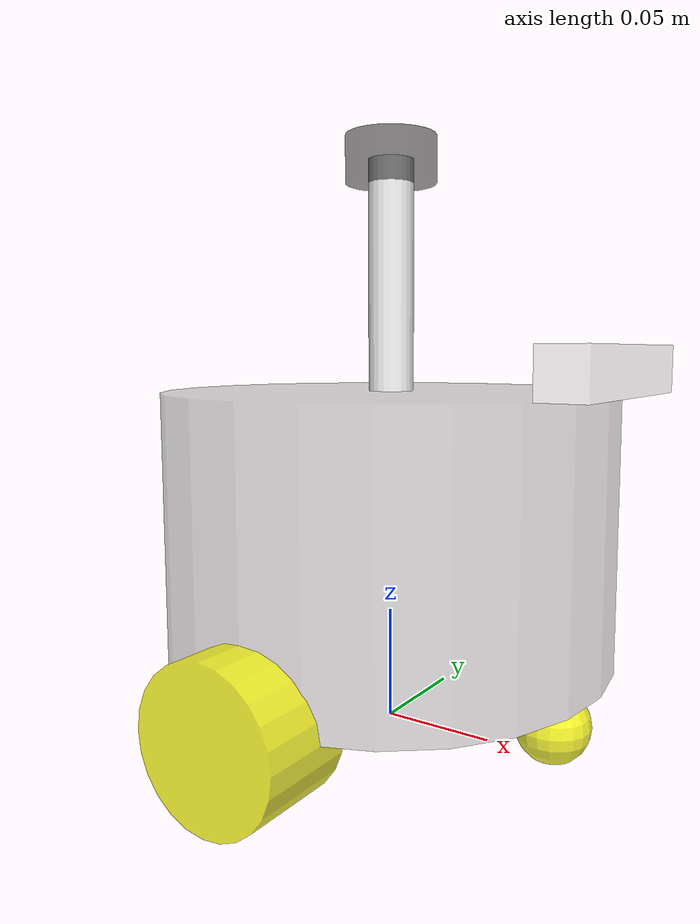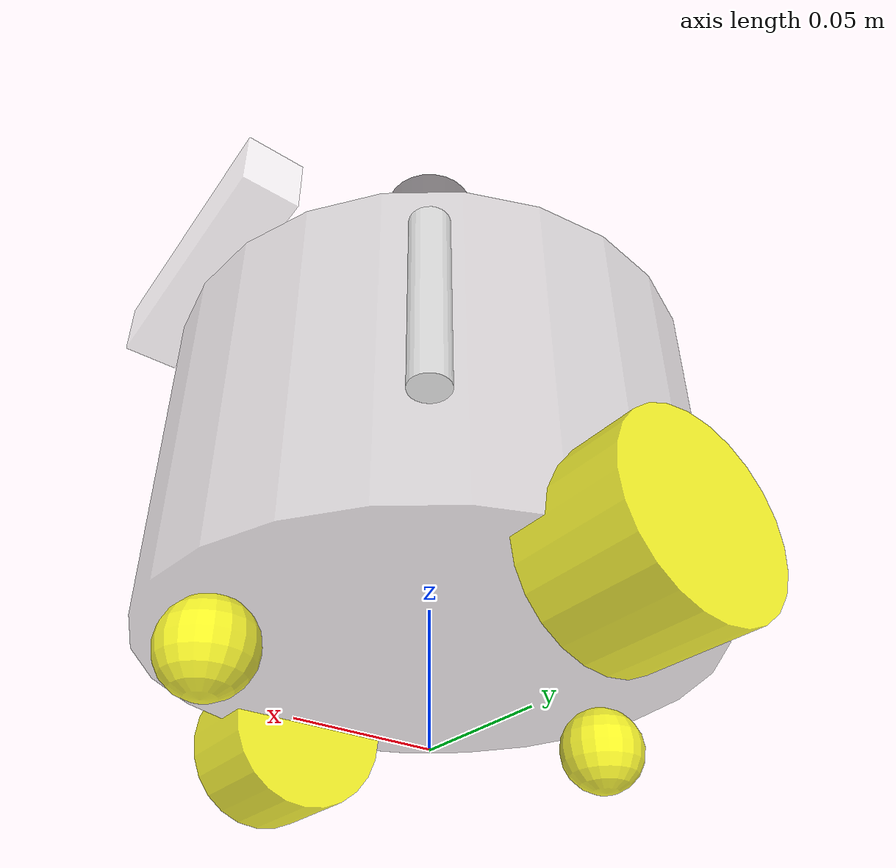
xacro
<?xml version="1.0"?>
<robot name="fishbot" xmlns:xacro="http://www.ros.org/wiki/xacro">
    <xacro:include filename="$(find fishbot_slam)/urdf/fishbot/base.urdf.xacro"/>

    <xacro:include filename="$(find fishbot_slam)/urdf/fishbot/sensor/imu.urdf.xacro" />
    <xacro:include filename="$(find fishbot_slam)/urdf/fishbot/sensor/camera.urdf.xacro" />
    <xacro:include filename="$(find fishbot_slam)/urdf/fishbot/sensor/laser.urdf.xacro" />

    <xacro:include filename="$(find fishbot_slam)/urdf/fishbot/actuator/wheel.urdf.xacro" />
    <xacro:include filename="$(find fishbot_slam)/urdf/fishbot/actuator/caster.urdf.xacro" />

    <xacro:include filename="$(find fishbot_slam)/urdf/fishbot/plugins/gazebo_sensor_plugin.xacro"/>
    <xacro:include filename="$(find fishbot_slam)/urdf/fishbot/fishbot.ros2_control.xacro"/>

    <xacro:base_xacro length="0.12" radius="0.10" />
    <xacro:imu_xacro xyz="0.0 0.0 0.02" />
    <xacro:camera_xacro xyz="0.10 0.0 0.07" />
    <xacro:laser_xacro xyz="0.0 0.0 0.11" />
    <xacro:wheel_xacro name="left_wheel" xyz="0.0 0.10 -0.06" />
    <xacro:wheel_xacro name="right_wheel" xyz="0.0 -0.10 -0.06" />
    <xacro:caster_xacro name="front_caster" xyz="0.08 0.0 -0.076" />
    <xacro:caster_xacro name="back_caster" xyz="-0.08 0.0 -0.076" />
    <xacro:gazebo_sensor_plugin />
    <xacro:fishbot_ros2_control />
</robot>

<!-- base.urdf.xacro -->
<robot xmlns:xacro="http://www.ros.org/wiki/xacro">
    <xacro:include filename="$(find fishbot_slam)/urdf/fishbot/common_inertia.xacro"/>
    <xacro:macro name="base_xacro" params="length radius">
        <link name="base_footprint">
        </link>
        <link name="base_link">
            <visual>
                <origin rpy="0 0 0" xyz="0 0 0"/>
                <geometry>
                    <cylinder radius="${radius}" length="${length}"/>
                </geometry>
                <material name="Gray">
                    <color rgba="0.7 0.7 0.7 0.5"/>
                </material>
            </visual>
            <collision>
                <origin rpy="0 0 0" xyz="0 0 0"/>
                <geometry>
                    <cylinder radius="${radius}" length="${length}"/>
                </geometry>
                <material name="Gray">
                    <color rgba="0.7 0.7 0.7 0.5"/>
                </material>
            </collision>
            <xacro:cylinder_inertia m="1.0" r="${radius}" h="${length}" />
        </link>
        <joint name="joint_name" type="fixed">
            <origin xyz="0.0 0.0 ${length/2.0 + 0.032 - 0.001}" rpy="0.0 0.0 0.0"/>
            <parent link="base_footprint"/>
            <child link="base_link"/>
        </joint>
        <gazebo reference="base_link">
            <material>
                Gazebo/GreyTransparent
            </material>
        </gazebo>
    </xacro:macro>
</robot>

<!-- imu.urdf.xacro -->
<robot xmlns:xacro="http://www.ros.org/wiki/xacro">
    <xacro:include filename="$(find fishbot_slam)/urdf/fishbot/common_inertia.xacro"/>
    <xacro:macro name="imu_xacro" params="xyz">
        <link name="imu_link">
            <visual>
                <origin rpy="0 0 0" xyz="0 0 0"/>
                <geometry>
                    <box size="0.02 0.02 0.02"/>
                </geometry>
                <material name="White">
                    <color rgba="1.0 1.0 1.0 0.5"/>
                </material>
                <xacro:box_inertia m="0.05" w="0.02" h="0.02" d="0.02" />
            </visual>
            <collision>
                <origin rpy="0 0 0" xyz="0 0 0"/>
                <geometry>
                    <box size="0.02 0.02 0.02"/>
                </geometry>
                <material name="White">
                    <color rgba="1.0 1.0 1.0 0.5"/>
                </material>
            </collision>
        </link>
        <joint name="imu_joint" type="fixed">
            <parent link="base_link"/>
            <child link="imu_link"/>
            <origin xyz="${xyz}" rpy="0.0 0.0 0.0"/>
        </joint>
        <gazebo reference="imu_link">
            <material>
                Gazebo/GreyTransparent
            </material>
        </gazebo>
    </xacro:macro>
</robot>

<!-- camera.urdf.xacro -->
<robot xmlns:xacro="http://www.ros.org/wiki/xacro">
    <xacro:include filename="$(find fishbot_slam)/urdf/fishbot/common_inertia.xacro"/>
    <xacro:macro name="camera_xacro" params="xyz">
        <link name="camera_link">
            <visual>
                <origin rpy="0 0 0" xyz="0 0 0"/>
                <geometry>
                    <box size="0.02 0.10 0.02"/>
                </geometry>
                <material name="White">
                    <color rgba="1.0 1.0 1.0 0.5"/>
                </material>
            </visual>
            <collision>
                <origin rpy="0 0 0" xyz="0 0 0"/>
                <geometry>
                    <box size="0.02 0.10 0.02"/>
                </geometry>
                <material name="White">
                    <color rgba="1.0 1.0 1.0 0.5"/>
                </material>
            </collision>
            <xacro:box_inertia m="0.1" w="0.02" h="0.10" d="0.02" />
        </link>
        <link name="camera_optical_link"></link>

        <joint name="camera_joint" type="fixed">
            <parent link="base_link"/>
            <child link="camera_link"/>
            <origin xyz="${xyz}" rpy="0.0 0.0 0.0"/>
        </joint>

        <joint name="camera_optical_joint" type="fixed">
            <parent link="camera_link"/>
            <child link="camera_optical_link"/>
            <origin xyz="0 0 0" rpy="${-pi/2} 0.0 ${-pi/2}"/>
        </joint>

        <gazebo reference="camera_link">
            <material>
                Gazebo/GreyTransparent
            </material>
        </gazebo>
    </xacro:macro>
</robot>

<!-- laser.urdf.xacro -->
<robot xmlns:xacro="http://www.ros.org/wiki/xacro">
    <xacro:include filename="$(find fishbot_slam)/urdf/fishbot/common_inertia.xacro"/>
    <xacro:macro name="laser_xacro" params="xyz">
        <link name="laser_cylinder_link">
            <visual>
                <origin rpy="0 0 0" xyz="0 0 0"/>
                <geometry>
                    <cylinder radius="0.01" length="0.10"/>
                </geometry>
                <material name="White">
                    <color rgba="1.0 1.0 1.0 1.0"/>
                </material>
            </visual>
            <collision>
                <origin rpy="0 0 0" xyz="0 0 0"/>
                <geometry>
                    <cylinder radius="0.01" length="0.10"/>
                </geometry>
                <material name="White">
                    <color rgba="1.0 1.0 1.0 1.0"/>
                </material>
            </collision>
            <xacro:cylinder_inertia m="0.01" r="0.01" h="0.10" />
        </link>
        <link name="laser_link">
            <visual>
                <origin rpy="0 0 0" xyz="0 0 0"/>
                <geometry>
                    <cylinder radius="0.02" length="0.02"/>
                </geometry>
                <material name="White">
                    <color rgba="0.0 0.0 0.0 0.5"/>
                </material>
            </visual>
            <collision>
                <origin rpy="0 0 0" xyz="0 0 0"/>
                <geometry>
                    <cylinder radius="0.02" length="0.02"/>
                </geometry>
                <material name="White">
                    <color rgba="0.0 0.0 0.0 0.5"/>
                </material>
            </collision>
            <xacro:cylinder_inertia m="0.03" r="0.02" h="0.02" />
        </link>
        <joint name="laser_joint" type="fixed">
            <parent link="laser_cylinder_link"/>
            <child link="laser_link"/>
            <origin xyz="0.0 0.0 0.05" rpy="0.0 0.0 0.0"/>
        </joint>

        <joint name="laser_cyblinder_joint" type="fixed">
            <parent link="base_link"/>
            <child link="laser_cylinder_link"/>
            <origin xyz="${xyz}" rpy="0.0 0.0 0.0"/>
        </joint>
        <gazebo reference="laser_cylinder_link">
            <material>
                Gazebo/GreyTransparent
            </material>
        </gazebo>
        <gazebo reference="laser_link">
            <material>
                Gazebo/GreyTransparent
            </material>
        </gazebo>
    </xacro:macro>
</robot>

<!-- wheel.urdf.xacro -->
<robot xmlns:xacro="http://www.ros.org/wiki/xacro">
    <xacro:include filename="$(find fishbot_slam)/urdf/fishbot/common_inertia.xacro"/>
    <xacro:macro name="wheel_xacro" params="name xyz">
        <link name="${name}_link">
            <visual>
                <origin rpy="1.57079 0 0" xyz="0 0 0"/>
                <geometry>
                    <cylinder radius="0.032" length="0.04" />
                </geometry>
                <material name="Yellow">
                    <color rgba="1.0 1.0 0.0 0.8"/>
                </material>
            </visual>
            <collision>
                <origin rpy="1.57079 0 0" xyz="0 0 0"/>
                <geometry>
                    <cylinder radius="0.032" length="0.04" />
                </geometry>
                <material name="Yellow">
                    <color rgba="1.0 1.0 0.0 0.8"/>
                </material>
            </collision>
            <xacro:cylinder_inertia m="0.05" r="0.032" h="0.04" />
        </link>
        <joint name="${name}_joint" type="continuous">
            <parent link="base_link"/>
            <child link="${name}_link"/>
            <origin xyz="${xyz}" rpy="0.0 0.0 0.0"/>
            <axis xyz="0 1 0"/>
        </joint>
        <gazebo reference="${name}_link">
            <mu1>20.0</mu1>
            <mu2>20.0</mu2>
            <kp>1000000000.0</kp>
            <kd>1.0</kd>
            <material>Gazebo/Yellow</material>
        </gazebo>
    </xacro:macro>
</robot>

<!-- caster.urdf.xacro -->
<robot xmlns:xacro="http://www.ros.org/wiki/xacro">
    <xacro:include filename="$(find fishbot_slam)/urdf/fishbot/common_inertia.xacro"/>
    <xacro:macro name="caster_xacro" params="name xyz">
        <link name="${name}_link">
            <visual>
                <origin rpy="0 0 0" xyz="0 0 0"/>
                <geometry>
                    <sphere radius="0.016"/>
                </geometry>
                <material name="Yellow">
                    <color rgba="1.0 1.0 0.0 0.8"/>
                </material>
            </visual>
            <collision>
                <origin rpy="0 0 0" xyz="0 0 0"/>
                <geometry>
                    <sphere radius="0.016"/>
                </geometry>
                <material name="Yellow">
                    <color rgba="1.0 1.0 0.0 0.8"/>
                </material>
            </collision>
            <xacro:sphere_inertia m="0.05" r="0.016"/>
        </link>
        <joint name="${name}_wheel_joint" type="fixed">
            <parent link="base_link"/>
            <child link="${name}_link"/>
            <origin xyz="${xyz}" rpy="0.0 0.0 0.0"/>
        </joint>
        <gazebo reference="${name}_link">
            <mu1>0.0</mu1>
            <mu2>0.0</mu2>
            <kp>1000000000.0</kp>
            <kd>1.0</kd>
            <material>Gazebo/Yellow</material>
        </gazebo>
    </xacro:macro>
</robot>
